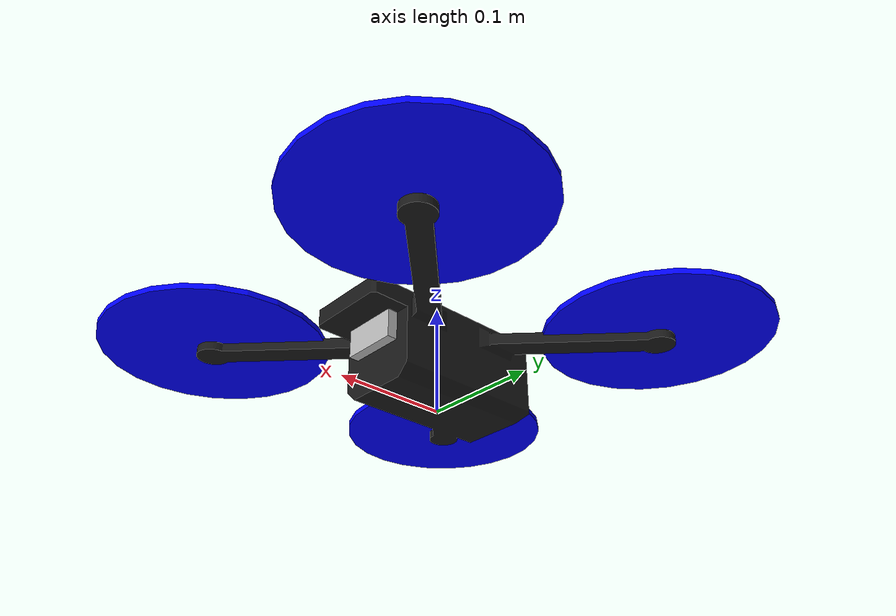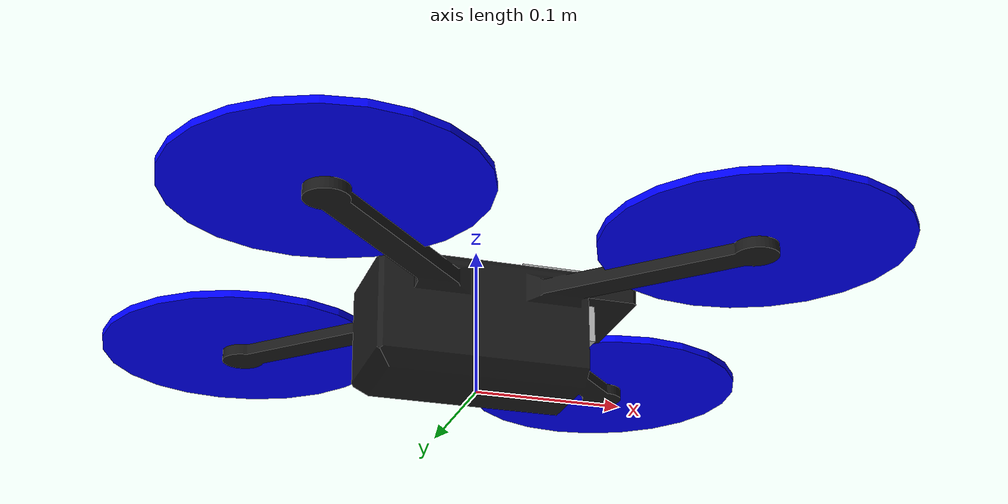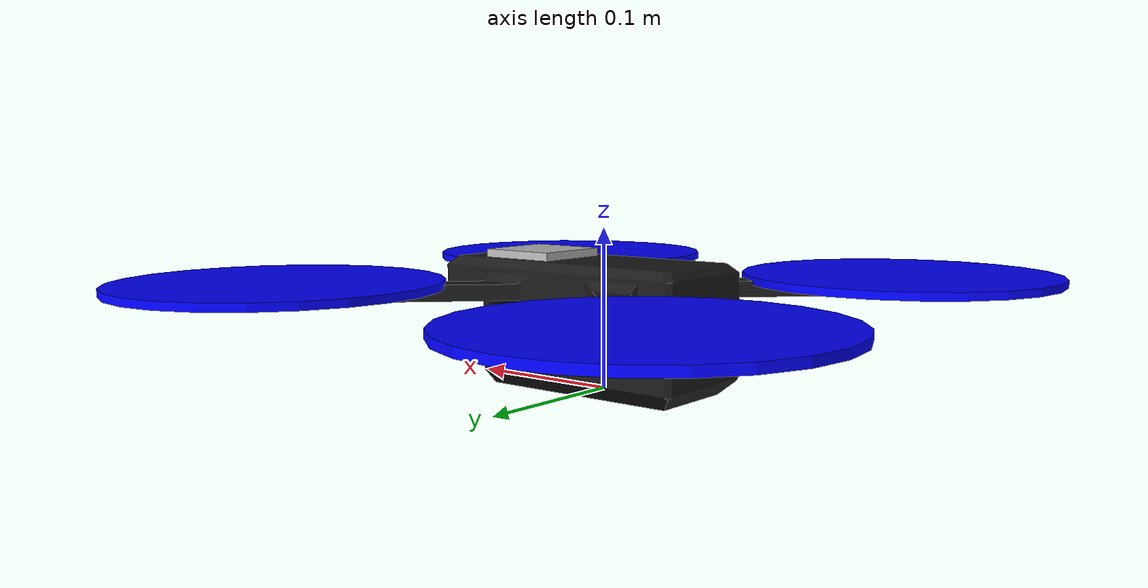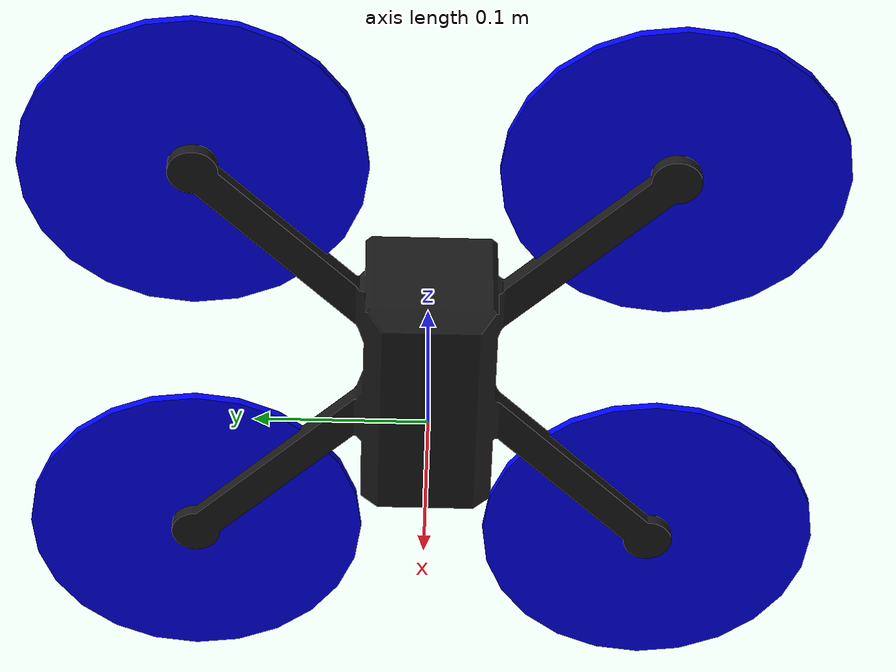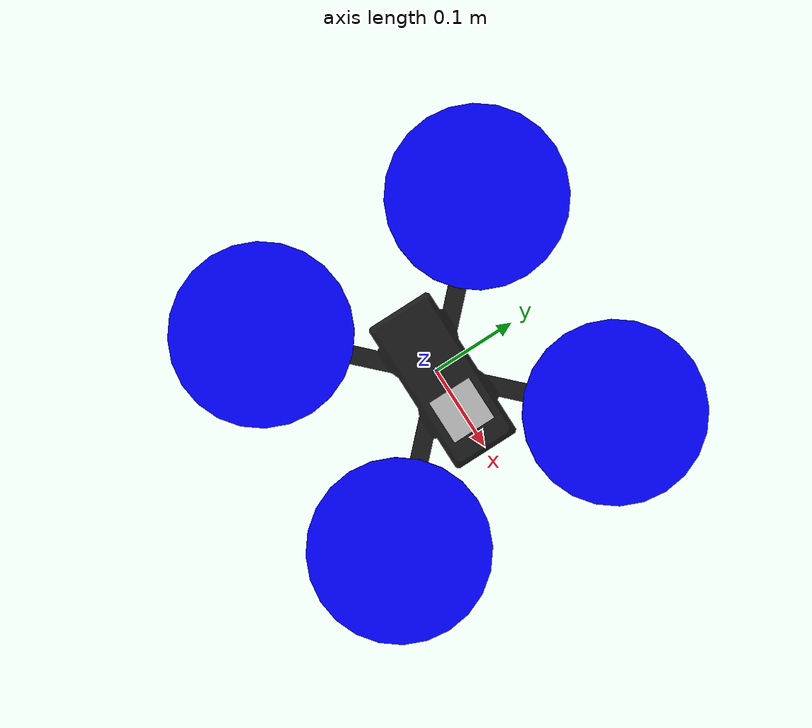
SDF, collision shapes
<sdf version='1.9'>
  <model name='dron_assembly'>
    <pose degrees="true">0 0 0 0 0 0</pose>
    <link name='dron_base_link'>
      <pose degrees="true">0 0 0 0 0 0</pose>
      <velocity_decay>
        <linear>0.0</linear>
        <angular>0.0</angular>
      </velocity_decay>
      <inertial>
        <pose>0.0008831251289440756 3.924268322443325e-18 0.04477388860190275 0 0 0</pose>
        <mass>1.0856969754697694</mass>
        <inertia>
          <ixx>0.0023387732420122303</ixx>
          <ixy>1.0611763546758318e-17</ixy>
          <ixz>-0.00013395066766006827</ixz>
          <iyy>0.003780645171860374</iyy>
          <iyz>2.6630532856281276e-18</iyz>
          <izz>0.005019179265963876</izz>
        </inertia>
      </inertial>
      <collision name='dron_base_link_collision'>
        <pose>0 0 0 0 0 0</pose>
        <geometry>
          <mesh>
            <scale>0.001 0.001 0.001</scale>
            <uri>meshes/FAST_DESING-v26_DRONE_FAST.stl</uri>
          </mesh>
        </geometry>
      </collision>
      <visual name='dron_base_link_visual'>
        <pose>0 0 0 0 0 0</pose>
        <material>
          <ambient>0.1 0.1 0.1 1.0</ambient>
          <diffuse>0.1 0.1 0.1 1.0</diffuse>
          <specular>0.01 0.01 0.01 1.0</specular>
          <emissive>0 0 0 0</emissive>
        </material>
        <geometry>
          <mesh>
            <scale>0.001 0.001 0.001</scale>
            <uri>meshes/FAST_DESING-v26_DRONE_FAST.stl</uri>
          </mesh>
        </geometry>
      </visual>
    </link>
    <link name='iris/ground_truth/odometry_sensorgt_link'>
      <pose>0 0 0 0 -0 0</pose>
      <inertial>
        <pose>0 0 0 0 0 0</pose>
        <mass>0.15</mass>
        <inertia>
          <ixx>0.0001</ixx>
          <ixy>0</ixy>
          <ixz>0</ixz>
          <iyy>0.0002</iyy>
          <iyz>0</iyz>
          <izz>0.0002</izz>
        </inertia>
      </inertial>
    </link>
    <joint name='iris/ground_truth/odometry_sensorgt_joint' type='revolute'>
      <child>iris/ground_truth/odometry_sensorgt_link</child>
      <parent>dron_base_link</parent>
      <axis>
        <xyz>0 0 1</xyz>
        <limit>
          <lower>0</lower>
          <upper>0</upper>
          <effort>0</effort>
          <velocity>0</velocity>
        </limit>
        <dynamics>
          <damping>1</damping>
        </dynamics>
        <use_parent_model_frame>1</use_parent_model_frame>
      </axis>
      <physics>
        <ode>
          <implicit_spring_damper>1</implicit_spring_damper>
        </ode>
      </physics>
    </joint>
    <!-- IMU Sensor Link -->
    <link name='imu_link'>
      <inertial>
        <pose>0 0 0 0 0 0</pose>
        <mass>0.15</mass>
        <inertia>
          <ixx>0.00001</ixx>
          <ixy>0</ixy>
          <ixz>0</ixz>
          <iyy>0.00002</iyy>
          <iyz>0</iyz>
          <izz>0.00002</izz>
        </inertia>
      </inertial>
      <sensor name='imu_sensor' type='imu'>
        <!-- Déjalo en 0,0,0 si la pose visual ya está arriba -->
        <pose>0 0 0 3.141593 0 0</pose>
        <always_on>1</always_on>
        <update_rate>1000</update_rate>
      </sensor>
      <sensor name="mag_sensor" type="magnetometer">
        <always_on>1</always_on>
        <update_rate>50</update_rate>
        <visualize>1</visualize>
      </sensor>
    </link>
    <!-- Fixed Joint: attach IMU to base -->
    <joint name='base_imu_joint' type='fixed'>
      <parent>dron_base_link</parent>
      <child>imu_link</child>
      <axis>
        <xyz>0 0 1</xyz>
        <limit>
          <lower>0</lower>
          <upper>0</upper>
          <effort>0</effort>
          <velocity>0</velocity>
        </limit>
        <dynamics>
          <damping>1</damping>
        </dynamics>
        <use_parent_model_frame>1</use_parent_model_frame>
      </axis>
      <physics>
        <ode>
          <implicit_spring_damper>1</implicit_spring_damper>
        </ode>
      </physics>
    </joint>

    <link name="camera_link">
      <pose>0.05 0 0.06 0 0 0</pose>
      <inertial>
        <mass>0.1</mass>
        <inertia>
          <ixx>0.000166667</ixx>
          <iyy>0.000166667</iyy>
          <izz>0.000166667</izz>
        </inertia>
      </inertial>
      <collision name="collision">
        <geometry>
          <box>
            <size>0.05 0.05 0.05</size>
          </box>
        </geometry>
      </collision>
      <visual name="visual">
        <geometry>
          <box>
            <size>0.05 0.05 0.05</size>
          </box>
        </geometry>
      </visual>
      <sensor name="left_camera" type="camera">
        <pose>0.2 0.05 0 0 0 0</pose>
        <camera>
          <horizontal_fov>1.047</horizontal_fov>
          <image>
            <width>320</width>
            <height>240</height>
            <format>R8G8B8</format>
          </image>
          <clip>
            <near>0.01</near>
            <far>100</far>
          </clip>
        </camera>
        <always_on>1</always_on>
        <update_rate>30</update_rate>
        <visualize>true</visualize>
        <topic>stereo/left/image_raw</topic>
      </sensor>
      <sensor name="right_camera" type="camera">
        <pose>0.2 -0.05 0 0 0 0</pose>
        <camera>
          <horizontal_fov>1.047</horizontal_fov>
          <image>
            <width>320</width>
            <height>240</height>
            <format>R8G8B8</format>
          </image>
          <clip>
            <near>0.01</near>
            <far>100</far>
          </clip>
        </camera>
        <always_on>1</always_on>
        <update_rate>30</update_rate>
        <visualize>true</visualize>
        <topic>stereo/right/image_raw</topic>
      </sensor>
    </link>
    <joint name="camera_joint" type="fixed">
      <parent>dron_base_link</parent>
      <child>camera_link</child>
      <pose>0 0 0 0 0 0</pose>
    </joint>

    <!-- ##### ROTORES ##### -->
    <!-- rotor_0 -->
    <link name='rotor_0'>
      <pose>0.14099494913695718 -0.13699494981205615 0.067000004479317 0 0 0</pose>
      <inertial>
        <pose>0 0 0 0 0 0</pose>
        <mass>0.018439981901447588</mass>
        <inertia>
          <ixx>2.2682595641485005e-05</ixx>
          <ixy>4.360944123317672e-12</ixy>
          <ixz>8.803185505129294e-13</ixz>
          <iyy>2.2682593734411216e-05</iyy>
          <iyz>1.5944499645921659e-12</iyz>
          <izz>4.521167580913451e-05</izz>
        </inertia>
      </inertial>
      <collision name='rotor_0_collision'>
        <pose>0 0 0 0 0 0</pose>
        <geometry>
          <cylinder>
            <length>0.005</length>
            <radius>0.1</radius>
          </cylinder>
        </geometry>
        <surface>
          <contact>
            <ode/>
          </contact>
          <friction>
            <ode/>
          </friction>
        </surface>
      </collision>
      <visual name='rotor_0_visual'>
        <pose>0 0 0 0 0 0</pose>
        <geometry>
          <mesh>
            <scale>0.001 0.001 0.001</scale>
            <uri>meshes/HELICE_PRUEBA-v9_Helice_CCW_2.stl</uri>
          </mesh>
        </geometry>
        <material>
          <ambient>0 0 1</ambient>
          <diffuse>0 0 1</diffuse>
          <specular>0.1 0.1 0.1 1</specular>
        </material>
      </visual>
    </link>
    <!-- Rotor 0 Joint -->
    <joint name='rotor_0_joint' type='revolute'>
      <child>rotor_0</child>
      <parent>dron_base_link</parent>
      <axis>
        <xyz>0 0 1</xyz>
        <limit>
          <lower>-1e+16</lower>
          <upper>1e+16</upper>
        </limit>
        <dynamics>
          <damping>0.004</damping>
        </dynamics>
        <use_parent_model_frame>1</use_parent_model_frame>
      </axis>
      <physics>
        <ode>
          <implicit_spring_damper>1</implicit_spring_damper>
        </ode>
      </physics>
    </joint>
    <!-- rotor_1 -->
    <link name='rotor_1'>
      <pose>-0.13299495086304286 0.13699495018794397 0.06700000447931698 0 0 0</pose>
      <inertial>
        <pose>0 0 0 0 0 0</pose>
        <mass>0.018439981901447588</mass>
        <inertia>
          <ixx>2.2682595641485005e-05</ixx>
          <ixy>4.360944123317672e-12</ixy>
          <ixz>8.803185505129294e-13</ixz>
          <iyy>2.2682593734411216e-05</iyy>
          <iyz>1.5944499645921659e-12</iyz>
          <izz>4.521167580913451e-05</izz>
        </inertia>
      </inertial>
      <collision name='rotor_1_collision'>
        <pose>0 0 0 0 -0 0</pose>
        <geometry>
          <cylinder>
            <length>0.005</length>
            <radius>0.1</radius>
          </cylinder>
        </geometry>
        <surface>
          <contact>
            <ode/>
          </contact>
          <friction>
            <ode/>
          </friction>
        </surface>
      </collision>
      <visual name='rotor_1_visual'>
        <pose>0 0 0 0 0 0</pose>
        <geometry>
          <mesh>
            <scale>0.001 0.001 0.001</scale>
            <uri>meshes/HELICE_PRUEBA-v9_Helice_CCW_1.stl</uri>
          </mesh>
        </geometry>
        <material>
          <ambient>0 0 1</ambient>
          <diffuse>0 0 1</diffuse>
          <specular>0.1 0.1 0.1 1</specular>
        </material>
      </visual>
    </link>
    <!-- Rotor 1 Joint -->
    <joint name='rotor_1_joint' type='revolute'>
      <child>rotor_1</child>
      <parent>dron_base_link</parent>
      <axis>
        <xyz>0 0 1</xyz>
        <limit>
          <lower>-1e+16</lower>
          <upper>1e+16</upper>
        </limit>
        <dynamics>
          <damping>0.004</damping>
        </dynamics>
        <use_parent_model_frame>1</use_parent_model_frame>
      </axis>
      <physics>
        <ode>
          <implicit_spring_damper>1</implicit_spring_damper>
        </ode>
      </physics>
    </joint>
    <!-- rotor_2 -->
    <link name='rotor_2'>
      <pose>0.14099494913695712 0.13699495018794397 0.06700000447931698 0 0 0</pose>
      <inertial>
        <pose>0 0 0 0 0 0</pose>
        <mass>0.018439981901447793</mass>
        <inertia>
          <ixx>2.268259564148882e-05</ixx>
          <ixy>-4.360944137235399e-12</ixy>
          <ixz>-8.803185330206345e-13</ixz>
          <iyy>2.2682593734416413e-05</iyy>
          <iyz>1.594450029800999e-12</iyz>
          <izz>4.521167580913631e-05</izz>
        </inertia>
      </inertial>
      <collision name='rotor_2_collision'>
        <pose>0 0 0 0 -0 0</pose>
        <geometry>
          <cylinder>
            <length>0.005</length>
            <radius>0.1</radius>
          </cylinder>
        </geometry>
        <surface>
          <contact>
            <ode/>
          </contact>
          <friction>
            <ode/>
          </friction>
        </surface>
      </collision>
      <visual name='rotor_2_visual'>
        <pose>0 0 0 0 0 0</pose>
        <geometry>
          <mesh>
            <scale>0.001 0.001 0.001</scale>
            <uri>meshes/HELICE_PRUEBA-v9_Helice_CW_1.stl</uri>
          </mesh>
        </geometry>
        <material>
          <ambient>0 0 1</ambient>
          <diffuse>0 0 1</diffuse>
          <specular>0.1 0.1 0.1 1</specular>
        </material>
      </visual>
    </link>
    <!-- Rotor 2 Joint -->
    <joint name='rotor_2_joint' type='revolute'>
      <child>rotor_2</child>
      <parent>dron_base_link</parent>
      <axis>
        <xyz>0 0 1</xyz>
        <limit>
          <lower>-1e+16</lower>
          <upper>1e+16</upper>
        </limit>
        <dynamics>
          <damping>0.004</damping>
        </dynamics>
        <use_parent_model_frame>1</use_parent_model_frame>
      </axis>
      <physics>
        <ode>
          <implicit_spring_damper>1</implicit_spring_damper>
        </ode>
      </physics>
    </joint>
    <!-- rotor_3 -->
    <link name='rotor_3'>
      <pose>-0.1329949508630428 -0.13699494981205615 0.06700000447931702 0 0 0</pose>
      <inertial>
        <pose>0 0 0 0 0 0</pose>
        <mass>0.018439981901447793</mass>
        <inertia>
          <ixx>2.268259564148882e-05</ixx>
          <ixy>-4.360944137235399e-12</ixy>
          <ixz>-8.803185330206345e-13</ixz>
          <iyy>2.2682593734416413e-05</iyy>
          <iyz>1.594450029800999e-12</iyz>
          <izz>4.521167580913631e-05</izz>
        </inertia>
      </inertial>
      <collision name='rotor_3_collision'>
        <pose>0 0 0 0 -0 0</pose>
        <geometry>
          <cylinder>
            <length>0.005</length>
            <radius>0.1</radius>
          </cylinder>
        </geometry>
        <surface>
          <contact>
            <ode/>
          </contact>
          <friction>
            <ode/>
          </friction>
        </surface>
      </collision>
      <visual name='rotor_3_visual'>
        <pose>0 0 0 0 0 0</pose>
        <geometry>
          <mesh>
            <scale>0.001 0.001 0.001</scale>
            <uri>meshes/HELICE_PRUEBA-v9_Helice_CW_2.stl</uri>
          </mesh>
        </geometry>
        <material>
          <ambient>0 0 1</ambient>
          <diffuse>0 0 1</diffuse>
          <specular>0.1 0.1 0.1 1</specular>
        </material>
      </visual>
    </link>
    <!-- Rotor 3 Joint -->
    <joint name='rotor_3_joint' type='revolute'>
      <child>rotor_3</child>
      <parent>dron_base_link</parent>
      <axis>
        <xyz>0 0 1</xyz>
        <limit>
          <lower>-1e+16</lower>
          <upper>1e+16</upper>
        </limit>
        <dynamics>
          <damping>0.004</damping>
        </dynamics>
        <use_parent_model_frame>1</use_parent_model_frame>
      </axis>
      <physics>
        <ode>
          <implicit_spring_damper>1</implicit_spring_damper>
        </ode>
      </physics>
    </joint>
    <static>0</static>

    <!-- Estado de articulaciones -->
    <plugin filename="libignition-gazebo-joint-state-publisher-system.so"
      name="ignition::gazebo::systems::JointStatePublisher">
    </plugin>

    <!--  Lift & Drag Plugins  -->

    <!-- Plugin for rotor 0 -->
      <plugin filename="libignition-gazebo-lift-drag-system.so"
        name="ignition::gazebo::systems::LiftDrag">
        <a0>0.3</a0>
        <alpha_stall>1.4</alpha_stall>
        <cla>2.11</cla>
        <cda>0.10</cda>
        <cma>0.00</cma>
        <cla_stall>-0.025</cla_stall>
        <cda_stall>0.0</cda_stall>
        <cma_stall>0.0</cma_stall>
        <cp>0.08 0 0.003</cp>
        <area>0.005</area>     <!-- algo mayor si hace falta -->
        <air_density>1.225</air_density>
        <forward>0 1 0</forward>
        <upward>0 0 1</upward>  <!-- o 0 0 -1 si mediste empuje negativo -->
        <link_name>rotor_0</link_name>
      </plugin>
      <plugin filename="libignition-gazebo-lift-drag-system.so"
        name="ignition::gazebo::systems::LiftDrag">
        <a0>0.3</a0>
        <alpha_stall>1.4</alpha_stall>
        <cla>2.11</cla>
        <cda>0.10</cda>
        <cma>0.00</cma>
        <cla_stall>-0.025</cla_stall>
        <cda_stall>0.0</cda_stall>
        <cma_stall>0.0</cma_stall>
        <cp>-0.04 0.069282 0.003</cp>
        <area>0.005</area>     <!-- algo mayor si hace falta -->
        <air_density>1.225</air_density>
        <forward>0.866025 -0.5 0</forward>
        <upward>0 0 1</upward>  <!-- o 0 0 -1 si mediste empuje negativo -->
        <link_name>rotor_0</link_name>
      </plugin>
      <plugin filename="libignition-gazebo-lift-drag-system.so"
        name="ignition::gazebo::systems::LiftDrag">
        <a0>0.3</a0>
        <alpha_stall>1.4</alpha_stall>
        <cla>2.11</cla>
        <cda>0.10</cda>
        <cma>0.00</cma>
        <cla_stall>-0.025</cla_stall>
        <cda_stall>0.0</cda_stall>
        <cma_stall>0.0</cma_stall>
        <cp>-0.04 -0.069282 0.003</cp>
        <area>0.005</area>     <!-- algo mayor si hace falta -->
        <air_density>1.225</air_density>
        <forward>0.866025 0.5 0</forward>
        <upward>0 0 1</upward>  <!-- o 0 0 -1 si mediste empuje negativo -->
        <link_name>rotor_0</link_name>
      </plugin>

    <!-- Plugin for rotor 1 -->
      <plugin filename="libignition-gazebo-lift-drag-system.so"
        name="ignition::gazebo::systems::LiftDrag">
        <a0>0.3</a0>
        <alpha_stall>1.4</alpha_stall>
        <cla>2.11</cla>
        <cda>0.10</cda>
        <cma>0.00</cma>
        <cla_stall>-0.025</cla_stall>
        <cda_stall>0.0</cda_stall>
        <cma_stall>0.0</cma_stall>
        <cp>0.08 0 0.003</cp>
        <area>0.005</area>     <!-- algo mayor si hace falta -->
        <air_density>1.225</air_density>
        <forward>0 1 0</forward>
        <upward>0 0 1</upward>  <!-- o 0 0 -1 si mediste empuje negativo -->
        <link_name>rotor_1</link_name>
      </plugin>
      <plugin filename="libignition-gazebo-lift-drag-system.so"
        name="ignition::gazebo::systems::LiftDrag">
        <a0>0.3</a0>
        <alpha_stall>1.4</alpha_stall>
        <cla>2.11</cla>
        <cda>0.10</cda>
        <cma>0.00</cma>
        <cla_stall>-0.025</cla_stall>
        <cda_stall>0.0</cda_stall>
        <cma_stall>0.0</cma_stall>
        <cp>-0.04 0.069282 0.003</cp>
        <area>0.005</area>     <!-- algo mayor si hace falta -->
        <air_density>1.225</air_density>
        <forward>0.866025 -0.5 0</forward>
        <upward>0 0 1</upward>  <!-- o 0 0 -1 si mediste empuje negativo -->
        <link_name>rotor_1</link_name>
      </plugin>
      <plugin filename="libignition-gazebo-lift-drag-system.so"
        name="ignition::gazebo::systems::LiftDrag">
        <a0>0.3</a0>
        <alpha_stall>1.4</alpha_stall>
        <cla>2.11</cla>
        <cda>0.10</cda>
        <cma>0.00</cma>
        <cla_stall>-0.025</cla_stall>
        <cda_stall>0.0</cda_stall>
        <cma_stall>0.0</cma_stall>
        <cp>-0.04 -0.069282 0.003</cp>
        <area>0.005</area>     <!-- algo mayor si hace falta -->
        <air_density>1.225</air_density>
        <forward>0.866025 0.5 0</forward>
        <upward>0 0 1</upward>  <!-- o 0 0 -1 si mediste empuje negativo -->
        <link_name>rotor_1</link_name>
      </plugin>

    <!-- Plugin for rotor 2 -->
      <plugin filename="libignition-gazebo-lift-drag-system.so"
        name="ignition::gazebo::systems::LiftDrag">
        <a0>0.3</a0>
        <alpha_stall>1.4</alpha_stall>
        <cla>2.11</cla>
        <cda>0.10</cda>
        <cma>0.00</cma>
        <cla_stall>-0.025</cla_stall>
        <cda_stall>0.0</cda_stall>
        <cma_stall>0.0</cma_stall>
        <cp>0.08 0 0.003</cp>
        <area>0.005</area>     <!-- algo mayor si hace falta -->
        <air_density>1.225</air_density>
        <forward>0 -1 0</forward>
        <upward>0 0 1</upward>  <!-- o 0 0 -1 si mediste empuje negativo -->
        <link_name>rotor_2</link_name>
      </plugin>
      <plugin filename="libignition-gazebo-lift-drag-system.so"
        name="ignition::gazebo::systems::LiftDrag">
        <a0>0.3</a0>
        <alpha_stall>1.4</alpha_stall>
        <cla>2.11</cla>
        <cda>0.10</cda>
        <cma>0.00</cma>
        <cla_stall>-0.025</cla_stall>
        <cda_stall>0.0</cda_stall>
        <cma_stall>0.0</cma_stall>
        <cp>-0.04 0.069282 0.003</cp>
        <area>0.005</area>     <!-- algo mayor si hace falta -->
        <air_density>1.225</air_density>
        <forward>0.866025 -0.5 0</forward>
        <upward>0 0 1</upward>  <!-- o 0 0 -1 si mediste empuje negativo -->
        <link_name>rotor_2</link_name>
      </plugin>
      <plugin filename="libignition-gazebo-lift-drag-system.so"
        name="ignition::gazebo::systems::LiftDrag">
        <a0>0.3</a0>
        <alpha_stall>1.4</alpha_stall>
        <cla>2.11</cla>
        <cda>0.10</cda>
        <cma>0.00</cma>
        <cla_stall>-0.025</cla_stall>
        <cda_stall>0.0</cda_stall>
        <cma_stall>0.0</cma_stall>
        <cp>-0.04 -0.069282 0.003</cp>
        <area>0.005</area>     <!-- algo mayor si hace falta -->
        <air_density>1.225</air_density>
        <forward>0.866025 0.5 0</forward>
        <upward>0 0 1</upward>  <!-- o 0 0 -1 si mediste empuje negativo -->
        <link_name>rotor_2</link_name>
      </plugin>

    <!-- Plugin for rotor 3 -->
      <plugin filename="libignition-gazebo-lift-drag-system.so"
        name="ignition::gazebo::systems::LiftDrag">
        <a0>0.3</a0>
        <alpha_stall>1.4</alpha_stall>
        <cla>2.11</cla>
        <cda>0.10</cda>
        <cma>0.00</cma>
        <cla_stall>-0.025</cla_stall>
        <cda_stall>0.0</cda_stall>
        <cma_stall>0.0</cma_stall>
        <cp>0.08 0 0.003</cp>
        <area>0.005</area>     <!-- algo mayor si hace falta -->
        <air_density>1.225</air_density>
        <forward>0 -1 0</forward>
        <upward>0 0 1</upward>  <!-- o 0 0 -1 si mediste empuje negativo -->
        <link_name>rotor_3</link_name>
      </plugin>
      <plugin filename="libignition-gazebo-lift-drag-system.so"
        name="ignition::gazebo::systems::LiftDrag">
        <a0>0.3</a0>
        <alpha_stall>1.4</alpha_stall>
        <cla>2.11</cla>
        <cda>0.10</cda>
        <cma>0.00</cma>
        <cla_stall>-0.025</cla_stall>
        <cda_stall>0.0</cda_stall>
        <cma_stall>0.0</cma_stall>
        <cp>-0.04 0.069282 0.003</cp>
        <area>0.005</area>     <!-- algo mayor si hace falta -->
        <air_density>1.225</air_density>
        <forward>0.866025 -0.5 0</forward>
        <upward>0 0 1</upward>  <!-- o 0 0 -1 si mediste empuje negativo -->
        <link_name>rotor_3</link_name>
      </plugin>
      <plugin filename="libignition-gazebo-lift-drag-system.so"
        name="ignition::gazebo::systems::LiftDrag">
        <a0>0.3</a0>
        <alpha_stall>1.4</alpha_stall>
        <cla>2.11</cla>
        <cda>0.10</cda>
        <cma>0.00</cma>
        <cla_stall>-0.025</cla_stall>
        <cda_stall>0.0</cda_stall>
        <cma_stall>0.0</cma_stall>
        <cp>-0.04 -0.069282 0.003</cp>
        <area>0.005</area>     <!-- algo mayor si hace falta -->
        <air_density>1.225</air_density>
        <forward>0.866025 0.5 0</forward>
        <upward>0 0 1</upward>  <!-- o 0 0 -1 si mediste empuje negativo -->
        <link_name>rotor_3</link_name>
      </plugin>

    <!-- ARDUPILOT PLUGIN -->

    <plugin name="ArduPilotPlugin" filename="libArduPilotPlugin.so">
      <!-- Dirección IP y puerto para comunicación -->
      <fdm_addr>127.0.0.1</fdm_addr>
      <fdm_port_in>9002</fdm_port_in>
      <connectionTimeoutMaxCount>5</connectionTimeoutMaxCount>
      <lock_step>1</lock_step>

      <!-- Conversión de coordenadas -->
      <modelXYZToAirplaneXForwardZDown degrees="true">0 0 0 180 0 0</modelXYZToAirplaneXForwardZDown>
      <gazeboXYZToNED degrees="true">0 0 0 180 0 0</gazeboXYZToNED>

      <!-- Sensor IMU -->
      <imuName>imu_sensor</imuName>
      <magSensorName>mag_sensor</magSensorName>

      <!-- Configuración de los motores -->
      <control channel="0">
        <jointName>rotor_0_joint</jointName>
        <useForce>1</useForce>
        <multiplier>838</multiplier>
        <offset>0</offset>
        <servo_min>1100</servo_min>
        <servo_max>1900</servo_max>
        <deadband>50</deadband>
        <type>VELOCITY</type>
        <p_gain>0.05</p_gain>
        <i_gain>0</i_gain>
        <d_gain>0</d_gain>
        <i_max>0</i_max>
        <i_min>0</i_min>
        <cmd_max>2.5</cmd_max>
        <cmd_min>-2.5</cmd_min>
        <controlVelocitySlowdownSim>1</controlVelocitySlowdownSim>
      </control>

      <control channel="1">
        <jointName>rotor_1_joint</jointName>
        <useForce>1</useForce>
        <multiplier>838</multiplier>
        <offset>0</offset>
        <servo_min>1100</servo_min>
        <servo_max>1900</servo_max>
        <deadband>50</deadband>
        <type>VELOCITY</type>
        <p_gain>0.05</p_gain>
        <i_gain>0</i_gain>
        <d_gain>0</d_gain>
        <i_max>0</i_max>
        <i_min>0</i_min>
        <cmd_max>2.5</cmd_max>
        <cmd_min>-2.5</cmd_min>
        <controlVelocitySlowdownSim>1</controlVelocitySlowdownSim>
      </control>

      <control channel="2">
        <jointName>rotor_2_joint</jointName>
        <useForce>1</useForce>
        <multiplier>-838</multiplier>
        <offset>0</offset>
        <servo_min>1100</servo_min>
        <servo_max>1900</servo_max>
        <deadband>50</deadband>
        <type>VELOCITY</type>
        <p_gain>0.05</p_gain>
        <i_gain>0</i_gain>
        <d_gain>0</d_gain>
        <i_max>0</i_max>
        <i_min>0</i_min>
        <cmd_max>2.5</cmd_max>
        <cmd_min>-2.5</cmd_min>
        <controlVelocitySlowdownSim>1</controlVelocitySlowdownSim>
      </control>

      <control channel="3">
        <jointName>rotor_3_joint</jointName>
        <useForce>1</useForce>
        <multiplier>-838</multiplier>
        <offset>0</offset>
        <servo_min>1100</servo_min>
        <servo_max>1900</servo_max>
        <deadband>50</deadband>
        <type>VELOCITY</type>
        <p_gain>0.05</p_gain>
        <i_gain>0</i_gain>
        <d_gain>0</d_gain>
        <i_max>0</i_max>
        <i_min>0</i_min>
        <cmd_max>2.5</cmd_max>
        <cmd_min>-2.5</cmd_min>
        <controlVelocitySlowdownSim>1</controlVelocitySlowdownSim>
      </control>

    </plugin>
  </model>
</sdf>
